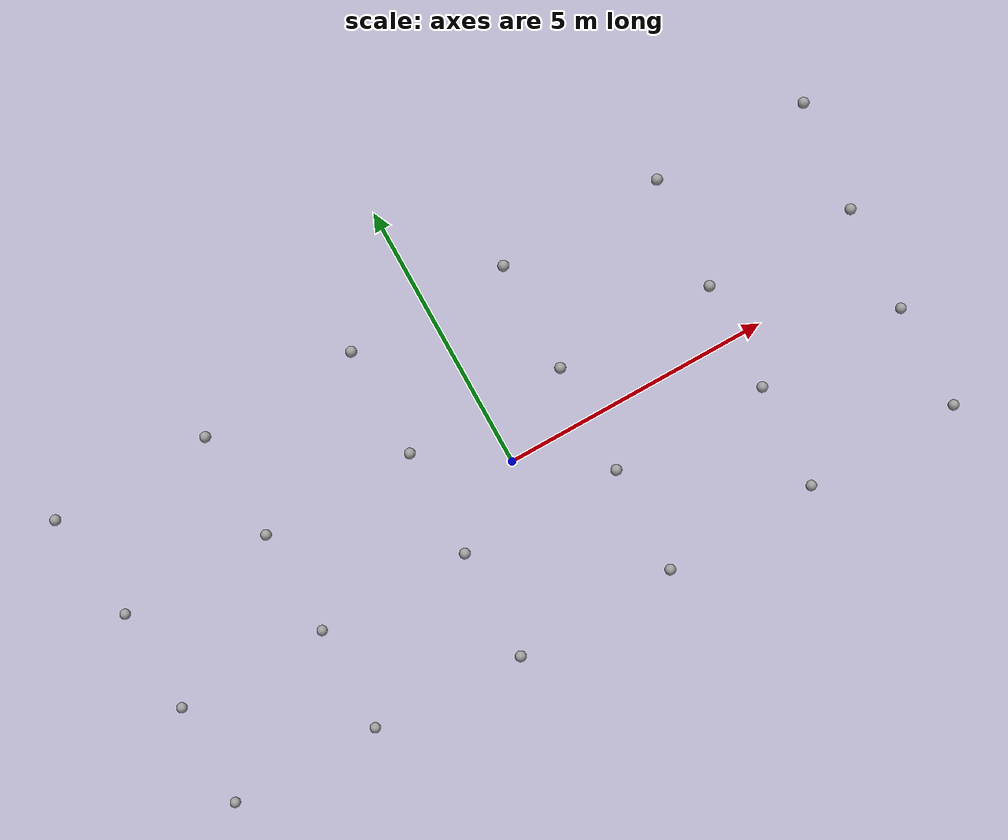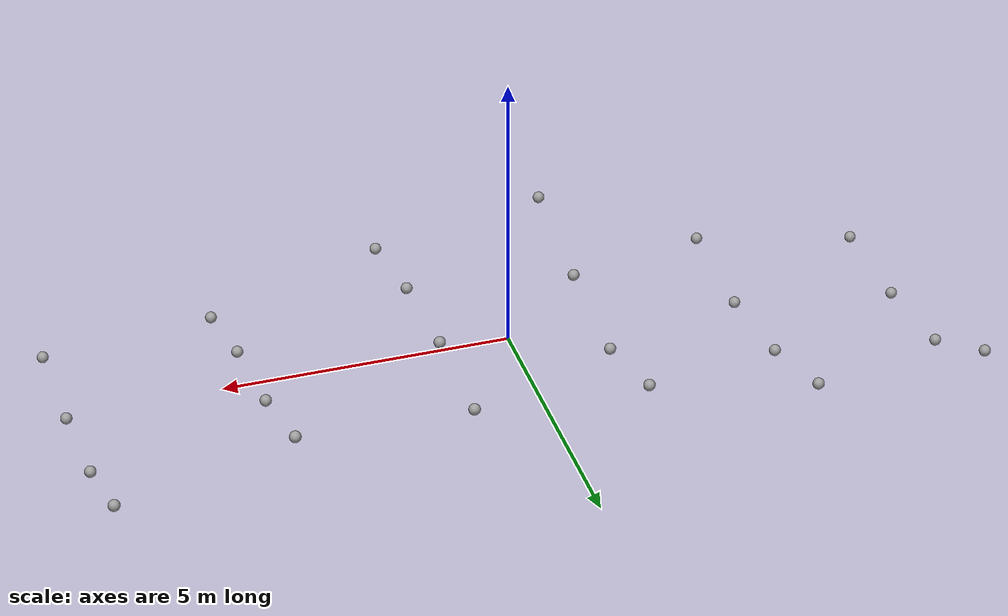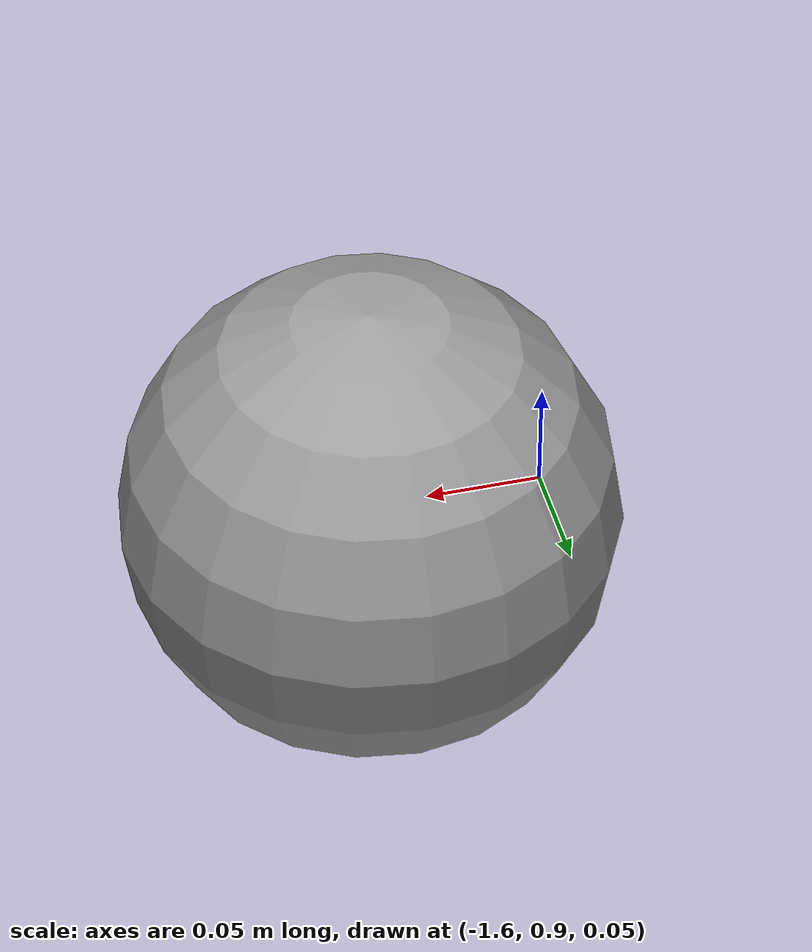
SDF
<sdf version="1.5">
 <world name="default">
  <include><uri>model://sun</uri></include>
  <model name="unit_sphere_0_0">
   <pose>-7.5 -3 -1.25 0 0 0</pose>
   <link name="unit_sphere_0_0::link">
    <visual name="visual">
     <geometry><sphere><radius>0.1</radius></sphere></geometry>
     <material>
      <script><name>Gazebo/Grey</name><uri>file://media/materials/scripts/gazebo.material</uri></script>
     </material>
    </visual>
    <gravity>0</gravity>
   </link>
  </model>
  <model name="unit_sphere_0_1">
   <pose>-7.5 -1 -1.2 0 0 0</pose>
   <link name="unit_sphere_0_1::link">
    <visual name="visual">
     <geometry><sphere><radius>0.1</radius></sphere></geometry>
     <material>
      <script><name>Gazebo/Grey</name><uri>file://media/materials/scripts/gazebo.material</uri></script>
     </material>
    </visual>
    <gravity>0</gravity>
   </link>
  </model>
  <model name="unit_sphere_0_2">
   <pose>-7.5 1 -0.9 0 0 0</pose>
   <link name="unit_sphere_0_2::link">
    <visual name="visual">
     <geometry><sphere><radius>0.1</radius></sphere></geometry>
     <material>
      <script><name>Gazebo/Grey</name><uri>file://media/materials/scripts/gazebo.material</uri></script>
     </material>
    </visual>
    <gravity>0</gravity>
   </link>
  </model>
  <model name="unit_sphere_0_3">
   <pose>-7.5 3 0.2 0 0 0</pose>
   <link name="unit_sphere_0_3::link">
    <visual name="visual">
     <geometry><sphere><radius>0.1</radius></sphere></geometry>
     <material>
      <script><name>Gazebo/Grey</name><uri>file://media/materials/scripts/gazebo.material</uri></script>
     </material>
    </visual>
    <gravity>0</gravity>
   </link>
  </model>
  <model name="unit_sphere_1_0">
   <pose>-4.5 -3 -0.7 0 0 0</pose>
   <link name="unit_sphere_1_0::link">
    <visual name="visual">
     <geometry><sphere><radius>0.1</radius></sphere></geometry>
     <material>
      <script><name>Gazebo/Grey</name><uri>file://media/materials/scripts/gazebo.material</uri></script>
     </material>
    </visual>
    <gravity>0</gravity>
   </link>
  </model>
  <model name="unit_sphere_1_1">
   <pose>-4.5 -1 -0.8 0 0 0</pose>
   <link name="unit_sphere_1_1::link">
    <visual name="visual">
     <geometry><sphere><radius>0.1</radius></sphere></geometry>
     <material>
      <script><name>Gazebo/Grey</name><uri>file://media/materials/scripts/gazebo.material</uri></script>
     </material>
    </visual>
    <gravity>0</gravity>
   </link>
  </model>
  <model name="unit_sphere_1_2">
   <pose>-4.5 1 -0.5 0 0 0</pose>
   <link name="unit_sphere_1_2::link">
    <visual name="visual">
     <geometry><sphere><radius>0.1</radius></sphere></geometry>
     <material>
      <script><name>Gazebo/Grey</name><uri>file://media/materials/scripts/gazebo.material</uri></script>
     </material>
    </visual>
    <gravity>0</gravity>
   </link>
  </model>
  <model name="unit_sphere_1_3">
   <pose>-4.5 3 0.15 0 0 0</pose>
   <link name="unit_sphere_1_3::link">
    <visual name="visual">
     <geometry><sphere><radius>0.1</radius></sphere></geometry>
     <material>
      <script><name>Gazebo/Grey</name><uri>file://media/materials/scripts/gazebo.material</uri></script>
     </material>
    </visual>
    <gravity>0</gravity>
   </link>
  </model>
  <model name="unit_sphere_2_0">
   <pose>-1.5 -3 0.75 0 0 0</pose>
   <link name="unit_sphere_2_0::link">
    <visual name="visual">
     <geometry><sphere><radius>0.1</radius></sphere></geometry>
     <material>
      <script><name>Gazebo/Grey</name><uri>file://media/materials/scripts/gazebo.material</uri></script>
     </material>
    </visual>
    <gravity>0</gravity>
   </link>
  </model>
  <model name="unit_sphere_2_1">
   <pose>-1.5 -1 0.375 0 0 0</pose>
   <link name="unit_sphere_2_1::link">
    <visual name="visual">
     <geometry><sphere><radius>0.1</radius></sphere></geometry>
     <material>
      <script><name>Gazebo/Grey</name><uri>file://media/materials/scripts/gazebo.material</uri></script>
     </material>
    </visual>
    <gravity>0</gravity>
   </link>
  </model>
  <model name="unit_sphere_2_2">
   <pose>-1.5 1 0.15 0 0 0</pose>
   <link name="unit_sphere_2_2::link">
    <visual name="visual">
     <geometry><sphere><radius>0.1</radius></sphere></geometry>
     <material>
      <script><name>Gazebo/Grey</name><uri>file://media/materials/scripts/gazebo.material</uri></script>
     </material>
    </visual>
    <gravity>0</gravity>
   </link>
  </model>
  <model name="unit_sphere_2_3">
   <pose>-1.5 3 0.75 0 0 0</pose>
   <link name="unit_sphere_2_3::link">
    <visual name="visual">
     <geometry><sphere><radius>0.1</radius></sphere></geometry>
     <material>
      <script><name>Gazebo/Grey</name><uri>file://media/materials/scripts/gazebo.material</uri></script>
     </material>
    </visual>
    <gravity>0</gravity>
   </link>
  </model>
  <model name="unit_sphere_3_0">
   <pose>1.5 -3 0.25 0 0 0</pose>
   <link name="unit_sphere_3_0::link">
    <visual name="visual">
     <geometry><sphere><radius>0.1</radius></sphere></geometry>
     <material>
      <script><name>Gazebo/Grey</name><uri>file://media/materials/scripts/gazebo.material</uri></script>
     </material>
    </visual>
    <gravity>0</gravity>
   </link>
  </model>
  <model name="unit_sphere_3_1">
   <pose>1.5 -1 0.7 0 0 0</pose>
   <link name="unit_sphere_3_1::link">
    <visual name="visual">
     <geometry><sphere><radius>0.1</radius></sphere></geometry>
     <material>
      <script><name>Gazebo/Grey</name><uri>file://media/materials/scripts/gazebo.material</uri></script>
     </material>
    </visual>
    <gravity>0</gravity>
   </link>
  </model>
  <model name="unit_sphere_3_2">
   <pose>1.5 1 0.9 0 0 0</pose>
   <link name="unit_sphere_3_2::link">
    <visual name="visual">
     <geometry><sphere><radius>0.1</radius></sphere></geometry>
     <material>
      <script><name>Gazebo/Grey</name><uri>file://media/materials/scripts/gazebo.material</uri></script>
     </material>
    </visual>
    <gravity>0</gravity>
   </link>
  </model>
  <model name="unit_sphere_3_3">
   <pose>1.5 3 0.9 0 0 0</pose>
   <link name="unit_sphere_3_3::link">
    <visual name="visual">
     <geometry><sphere><radius>0.1</radius></sphere></geometry>
     <material>
      <script><name>Gazebo/Grey</name><uri>file://media/materials/scripts/gazebo.material</uri></script>
     </material>
    </visual>
    <gravity>0</gravity>
   </link>
  </model>
  <model name="unit_sphere_4_0">
   <pose>4.5 -3 -0.6 0 0 0</pose>
   <link name="unit_sphere_4_0::link">
    <visual name="visual">
     <geometry><sphere><radius>0.1</radius></sphere></geometry>
     <material>
      <script><name>Gazebo/Grey</name><uri>file://media/materials/scripts/gazebo.material</uri></script>
     </material>
    </visual>
    <gravity>0</gravity>
   </link>
  </model>
  <model name="unit_sphere_4_1">
   <pose>4.5 -1 0 0 0 0</pose>
   <link name="unit_sphere_4_1::link">
    <visual name="visual">
     <geometry><sphere><radius>0.1</radius></sphere></geometry>
     <material>
      <script><name>Gazebo/Grey</name><uri>file://media/materials/scripts/gazebo.material</uri></script>
     </material>
    </visual>
    <gravity>0</gravity>
   </link>
  </model>
  <model name="unit_sphere_4_2">
   <pose>4.5 1 0.35 0 0 0</pose>
   <link name="unit_sphere_4_2::link">
    <visual name="visual">
     <geometry><sphere><radius>0.1</radius></sphere></geometry>
     <material>
      <script><name>Gazebo/Grey</name><uri>file://media/materials/scripts/gazebo.material</uri></script>
     </material>
    </visual>
    <gravity>0</gravity>
   </link>
  </model>
  <model name="unit_sphere_4_3">
   <pose>4.5 3 1 0 0 0</pose>
   <link name="unit_sphere_4_3::link">
    <visual name="visual">
     <geometry><sphere><radius>0.1</radius></sphere></geometry>
     <material>
      <script><name>Gazebo/Grey</name><uri>file://media/materials/scripts/gazebo.material</uri></script>
     </material>
    </visual>
    <gravity>0</gravity>
   </link>
  </model>
  <model name="unit_sphere_5_0">
   <pose>7.5 -3 -0.825 0 0 0</pose>
   <link name="unit_sphere_5_0::link">
    <visual name="visual">
     <geometry><sphere><radius>0.1</radius></sphere></geometry>
     <material>
      <script><name>Gazebo/Grey</name><uri>file://media/materials/scripts/gazebo.material</uri></script>
     </material>
    </visual>
    <gravity>0</gravity>
   </link>
  </model>
  <model name="unit_sphere_5_1">
   <pose>7.5 -1 -0.75 0 0 0</pose>
   <link name="unit_sphere_5_1::link">
    <visual name="visual">
     <geometry><sphere><radius>0.1</radius></sphere></geometry>
     <material>
      <script><name>Gazebo/Grey</name><uri>file://media/materials/scripts/gazebo.material</uri></script>
     </material>
    </visual>
    <gravity>0</gravity>
   </link>
  </model>
  <model name="unit_sphere_5_2">
   <pose>7.5 1 -0.45 0 0 0</pose>
   <link name="unit_sphere_5_2::link">
    <visual name="visual">
     <geometry><sphere><radius>0.1</radius></sphere></geometry>
     <material>
      <script><name>Gazebo/Grey</name><uri>file://media/materials/scripts/gazebo.material</uri></script>
     </material>
    </visual>
    <gravity>0</gravity>
   </link>
  </model>
  <model name="unit_sphere_5_3">
   <pose>7.5 3 0.3 0 0 0</pose>
   <link name="unit_sphere_5_3::link">
    <visual name="visual">
     <geometry><sphere><radius>0.1</radius></sphere></geometry>
     <material>
      <script><name>Gazebo/Grey</name><uri>file://media/materials/scripts/gazebo.material</uri></script>
     </material>
    </visual>
    <gravity>0</gravity>
   </link>
  </model>
  <physics name="default_physics" default="0" type="ode">
   <gravity>0 0 -9.8066</gravity>
   <ode>
    <solver>
     <type>quick</type>
     <iters>10</iters>
     <sor>1.3</sor>
     <use_dynamic_moi_rescaling>0</use_dynamic_moi_rescaling>
    </solver>
    <constraints>
     <cfm>0</cfm>
     <erp>0.2</erp>
     <contact_max_correcting_vel>100</contact_max_correcting_vel>
     <contact_surface_layer>0.001</contact_surface_layer>
    </constraints>
   </ode>
   <max_step_size>0.004</max_step_size>
   <real_time_factor>1</real_time_factor>
   <real_time_update_rate>250</real_time_update_rate>
   <magnetic_field>6.0e-6 2.3e-5 -4.2e-5</magnetic_field>
  </physics>
 </world>
</sdf>
